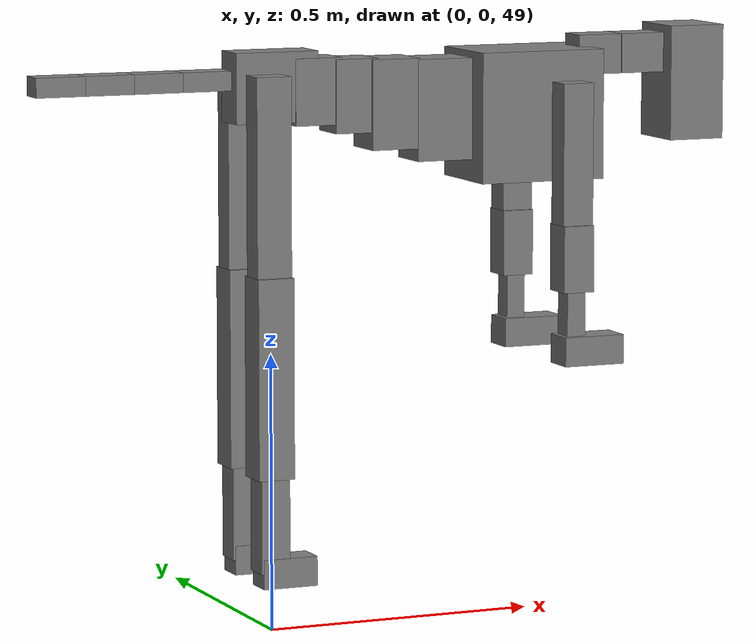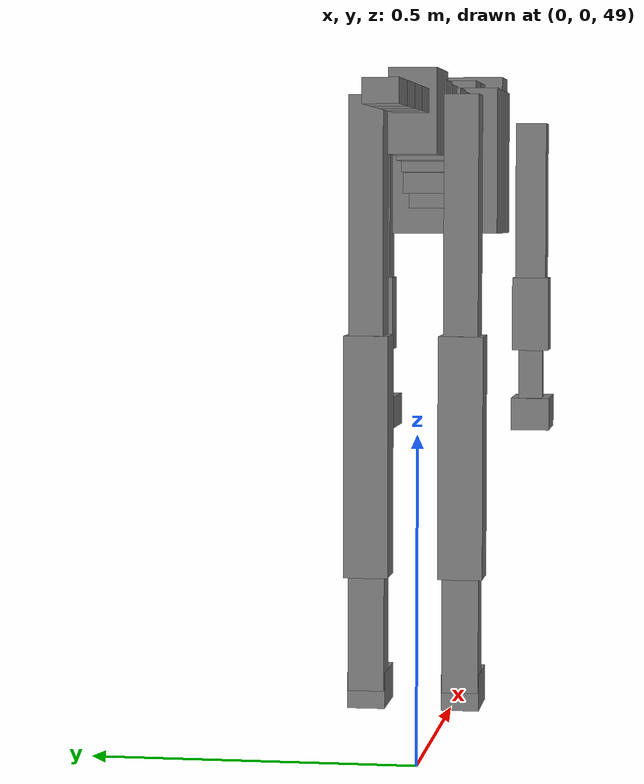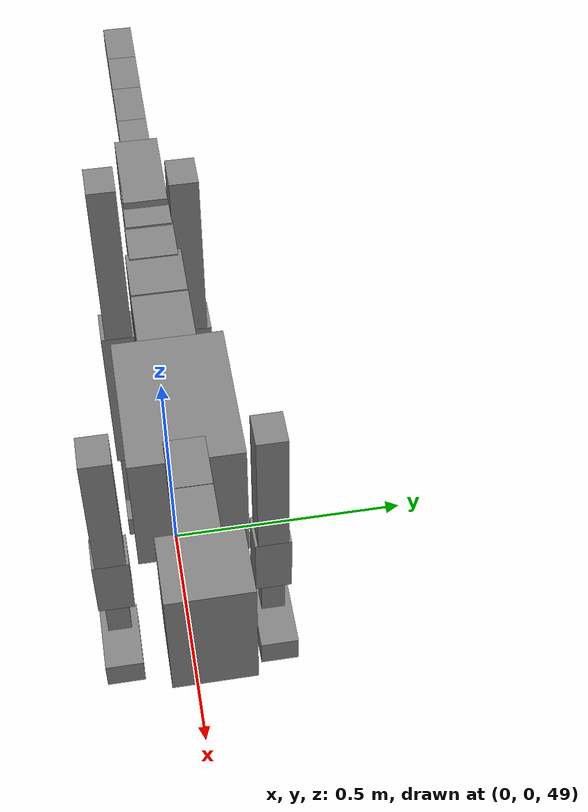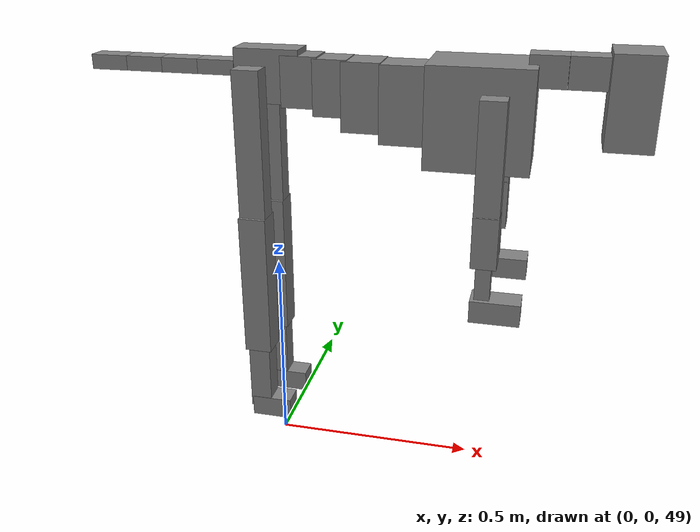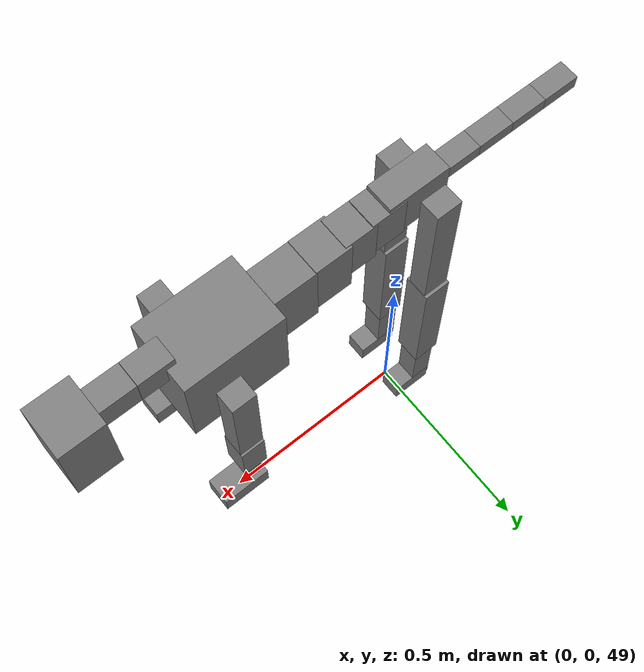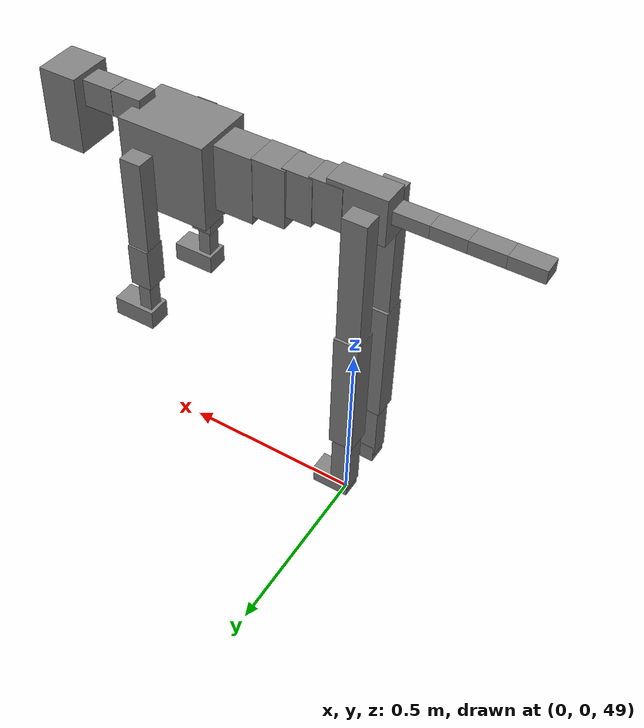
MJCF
<mujoco model="dog">

    <default>
        <joint armature="0.02" stiffness="1" damping="0.2" limited="true"/>
        <geom condim="3" friction="1 0.05 0.05" margin="0.01"/>
        <motor ctrllimited="true" ctrlrange="-1.0 1.0" forcelimited="true" gear="50"/>
    </default>

    <compiler inertiafromgeom="true" angle="radian"/>

    <option timestep="0.016" iterations="50" tolerance="1e-10" solver="Newton" jacobian="dense" cone="pyramidal"/>

    <size nconmax="20000" njmax="60000" nstack="5000000"/>
    <visual>
        <map force="0.1" zfar="30"/>
        <rgba haze="0.15 0.25 0.35 1"/>
        <quality shadowsize="2048"/>
        <global offwidth="800" offheight="800"/>
    </visual>

    <asset>
        <texture type="skybox" builtin="gradient" rgb1="0.3 0.5 0.7" rgb2="0 0 0" width="512" height="512"/>
        <texture name="texplane" type="2d" builtin="checker" rgb1=".2 .3 .4" rgb2=".1 0.15 0.2" width="512" height="512"
                 mark="cross" markrgb=".8 .8 .8"/>
        <texture name="texgeom" type="cube" builtin="flat" mark="cross" width="127" height="1278" rgb1="0.8 0.6 0.4"
                 rgb2="0.8 0.6 0.4" markrgb="1 1 1" random="0.01"/>

        <material name="matplane" reflectance="0.3" texture="texplane" texrepeat="1 1" texuniform="true"/>
        <material name="matgeom" texture="texgeom" texuniform="true" rgba="0.8 0.6 .4 1"/>
    </asset>

    <worldbody>
        <geom name="floor" pos="0 0 0" size="0 0 .25" type="plane" material="matplane" condim="3"/>

        <light directional="false" diffuse=".2 .2 .2" specular="0 0 0" pos="0 0 5" dir="0 0 -1" castshadow="false"/>
        <light mode="targetbodycom" target="torso" directional="false" diffuse=".8 .8 .8" specular="0.3 0.3 0.3"
               pos="0 0 4.0" dir="0 0 -1"/>

        <body name="root" pos="0 0 50">
            <freejoint name="root_1"/>
            <geom type="box" pos="0 0 -0.02" size="0.0774  0.0358  0.063" density="2030"/>

            <body name="spine1" pos="0.054 0 0">
                <joint name="spine1_y" axis="0 1 0" range="0 0.7" limited="true"/>
                <geom type="box" pos="0.02375 0 -0.03" size="0.04375  0.0375  0.05985" density="2030"/>

                <body name="spine2" pos="0.0612 0 0">
                    <joint name="spine2_y" axis="0 1 0" range="-0.15 0.15" limited="true"/>
                    <geom type="box" pos="0.03555  0  -0.04" size="0.04055  0.039  0.06615" density="2030"/>

                    <body name="spine3" pos="0.0730 0 0">
                        <joint name="spine3_y" axis="0 1 0" range="-0.15 0.15" limited="true"/>
                        <geom type="box" pos="0.03555  0  -0.057" size="0.04555  0.0445  0.081" density="2030"/>

                        <body name="spine4" pos="0.0780 0 0">
                            <joint name="spine4_y" axis="0 1 0" range="-0.15 0.15" limited="true"/>
                            <geom type="box" pos="0.05265  0  -0.07" size="0.05265  0.045  0.09135" density="2030"/>

                            <body name="torso" pos="0.1082 0 0">
                                <joint name="torso_y" axis="0 1 0" range="-0.15 0.15" limited="true"/>
                                <geom type="box" pos="0.11925  0  -0.085" size="0.11925  0.085  0.11745"
                                      density="2030"/>

                                <body name="neck1" pos="0.2160  0   0.0180">
                                    <joint name="neck1_y" axis="0 1 0" range="-1.2  -1" limited="true"/>
                                    <geom type="box" pos="0.0423  0  0" size="0.0423  0.03  0.036" density="2325"/>

                                    <body name="neck2" pos="0.0853  0  0">
                                        <joint name="neck2_y" axis="0 1 0" range="0.1  0" limited="true"/>
                                        <geom type="box" pos="0.0423  0  0" size="0.0423  0.03  0.036" density="2325"/>

                                        <body name="head" pos="0.0853  0  0">
                                            <joint name="head_y" axis="0 1 0" range="-0.3  -0.2" limited="true"/>
                                            <geom type="box" pos="0.0531  0  -0.055" size="0.0531  0.06  0.1044"
                                                  density="4030"/>

                                        </body>
                                    </body>
                                </body>

                                <body name="front_shoulder" pos="0.156  0   -0.0480">
                                    <joint name="front_shoulder_y" axis="0 1 0" range="-1 1.5" limited="true"/>
                                    <geom type="box" pos="0 0.13 -0.1143" size="0.0291  0.0249  0.1410" density="1158"/>
                                    <geom type="box" pos="0 -0.13 -0.1143" size="0.0291  0.0249  0.1410"
                                          density="1158"/>

                                    <body name="front_elbow" pos="0  0  -0.2287">
                                        <joint name="front_elbow_y" axis="0 1 0" range="-2 0" limited="true"/>
                                        <geom type="box" pos="0 0.13 -0.0602" size="0.0292  0.0298  0.0602"
                                              density="1081"/>
                                        <geom type="box" pos="0 -0.13 -0.0602" size="0.0292  0.0298  0.0602"
                                              density="1081"/>

                                        <body name="front_wrist" pos="0  0  -0.1204">
                                            <joint name="front_wrist_y" axis="0 1 0" range="-0.2 0" limited="true"/>
                                            <geom type="box" pos="0 0.13 -0.0475" size="0.0176  0.0196  0.0607"
                                                  density="1664"/>
                                            <geom type="box" pos="0 -0.13 -0.0475" size="0.0176  0.0196  0.0607"
                                                  density="1664"/>

                                            <body name="front_finger_end" pos="0  0  -0.0951">
                                                <joint name="front_finger_y" axis="0 1 0" range="-0.4 1"
                                                       limited="true"/>
                                                <geom type="box" pos="0.0315  0.13  -0.0115"
                                                      size="0.0577  0.0315  0.0265" density="1515"/>
                                                <geom type="box" pos="0.0315  -0.13  -0.0115"
                                                      size="0.0577  0.0315  0.0265" density="1515"/>

                                            </body>

                                        </body>
                                    </body>
                                </body>

                            </body>
                        </body>
                    </body>
                </body>
            </body>

            <body name="back_hip" pos="-0.03 0 -0.018">
                <joint name="back_hip_y" axis="0 1 0" range="-1.5 0.3" limited="true"/>
                <geom type="box" pos="0 0.07 -0.1735" size="0.0323  0.0254  0.1963" density="1154"/>
                <geom type="box" pos="0 -0.07 -0.1735" size="0.0323  0.0254  0.1963" density="1154"/>

                <body name="back_knee" pos="0  0  -0.3470">
                    <joint name="back_knee_y" axis="0 1 0" range="0 2.8" limited="true"/>
                    <geom type="box" pos="0 0.07 -0.1639" size="0.0336  0.0331  0.1794" density="1227"/>
                    <geom type="box" pos="0 -0.07 -0.1639" size="0.0336  0.0331  0.1794" density="1227"/>

                    <body name="back_ankle" pos="0  0  -0.3277">
                        <joint name="back_ankle_y" axis="0 1 0" range="-2.2 0" limited="true"/>
                        <geom type="box" pos="0 0.07 -0.0867" size="0.0269  0.0269  0.0979" density="1284"/>
                        <geom type="box" pos="0 -0.07 -0.0867" size="0.0269  0.0269  0.0979" density="1284"/>

                        <body name="back_toe_end" pos="0  0  -0.1734">
                            <joint name="back_toe_y" axis="0 1 0" range="-0.4 1" limited="true"/>
                            <geom type="box" pos="0.0277  0.07  -0.0116" size="0.0508  0.0277  0.0266" density="1515"/>
                            <geom type="box" pos="0.0277  -0.07  -0.0116" size="0.0508  0.0277  0.0266" density="1515"/>

                        </body>
                    </body>
                </body>
            </body>

            <body name="tail1" pos="-0.074 0 -0.006">
                <joint name="tail1_y" axis="0 1 0" range="-0.2 0.2" limited="true"/>
                <geom type="box" pos="-0.0536  0  0" size="0.045  0.025  0.0175" density="1587"/>

                <body name="tail2" pos="-0.09 0 0">
                    <joint name="tail2_y" axis="0 1 0" range="-0.2 0.2" limited="true"/>
                    <geom type="box" pos="-0.0536  0  0" size="0.045  0.025  0.0175" density="1587"/>

                    <body name="tail3" pos="-0.09 0 0">
                        <joint name="tail3_y" axis="0 1 0" range="-0.2 0.2" limited="true"/>
                        <geom type="box" pos="-0.0536  0  0" size="0.045  0.025  0.0175" density="1587"/>

                        <body name="tail4" pos="-0.09 0 0">
                            <joint name="tail4_y" axis="0 1 0" range="-0.2 0.2" limited="true"/>
                            <geom type="box" pos="-0.0536  0  0" size="0.045  0.025  0.0175" density="1587"/>

                        </body>
                    </body>
                </body>
            </body>
        </body>
    </worldbody>

    <actuator>
        <motor joint="spine1_y" forcerange="-150 150     "/>
        <motor joint="spine2_y" forcerange="-150 150     "/>
        <motor joint="spine3_y" forcerange="-150 150     "/>
        <motor joint="spine4_y" forcerange="-150 150     "/>
        <motor joint="torso_y" forcerange="-150 150     "/>
        <motor joint="neck1_y" forcerange="-100 100       "/>
        <motor joint="neck2_y" forcerange="-100 100       "/>
        <motor joint="head_y" forcerange="-150 150       "/>
        <motor joint="front_shoulder_y" forcerange="-151.10 114.62"/>
        <motor joint="front_elbow_y" forcerange="-187.16 129.85"/>
        <motor joint="front_wrist_y" forcerange="-58.08 98.66"/>
        <motor joint="front_finger_y" forcerange="-73.82 54.12"/>
        <motor joint="back_hip_y" forcerange="-337.07 201.09"/>
        <motor joint="back_knee_y" forcerange="-327.76 353.66"/>
        <motor joint="back_angle_y" forcerange="-121.34 209.08"/>
        <motor joint="back_toe_y" forcerange="-114.85 26.73"/>
        <motor joint="tail1_y" forcerange="-50 50     "/>
        <motor joint="tail2_y" forcerange="-50 50     "/>
        <motor joint="tail3_y" forcerange="-50 50     "/>
        <motor joint="tail4_y" forcerange="-50 50     "/>
    </actuator>
</mujoco>
